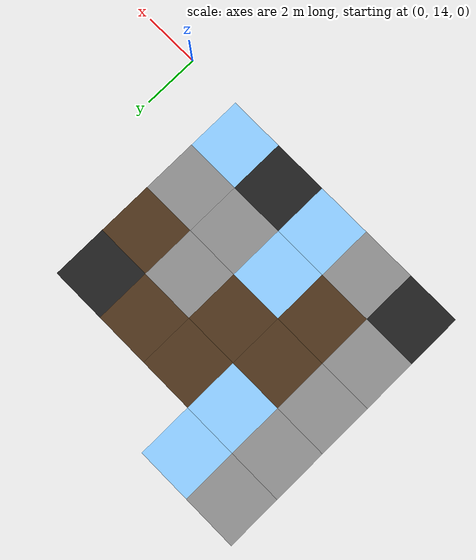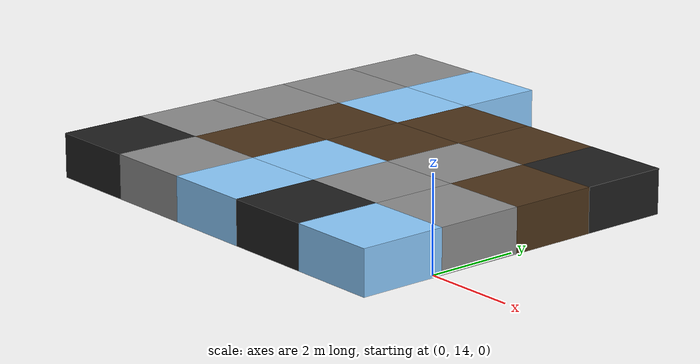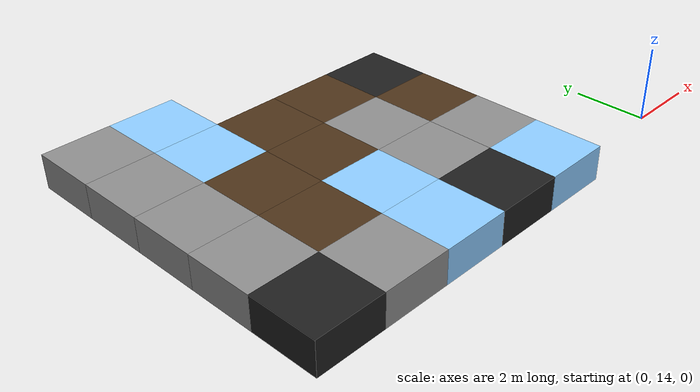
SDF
<sdf version="1.5">
 <world name="squares_example">
  <model name="tile_10_23">
   <static>true</static>
   <pose>-11.000 15.000 -0.500 0 0 0</pose>
   <link name="link">
    <collision name="col">
     <geometry><box><size>2.0 2.0 1.0</size></box></geometry>
     <surface>
      <friction>
       <ode><mu>0.4</mu><mu2>0.15</mu2><fdir1>1 0 0</fdir1><slip1>0.0</slip1><slip2>0.0</slip2></ode>
       <torsional>
        <coefficient>0.03</coefficient>
        <use_patch_radius>false</use_patch_radius>
        <surface_radius>0.12</surface_radius>
        <ode><slip>0.0</slip></ode>
       </torsional>
      </friction>
      <bounce><restitution_coefficient>0.0</restitution_coefficient><threshold>0.1</threshold></bounce>
      <contact>
       <ode><kp>1000000000.0</kp><kd>1000000.0</kd><max_vel>0.01</max_vel><min_depth>0.0</min_depth></ode>
      </contact>
     </surface>
    </collision>
    <visual name="visual">
     <geometry><box><size>2.0 2.0 1.0</size></box></geometry>
     <material>
      <diffuse>0.12 0.12 0.12 1</diffuse>
      <ambient>0 0 0 0</ambient>
      <specular>0 0 0 1</specular>
      <emissive>0 0 0 1</emissive>
     </material>
    </visual>
   </link>
  </model>
  <model name="tile_11_23">
   <static>true</static>
   <pose>-9.000 15.000 -0.500 0 0 0</pose>
   <link name="link">
    <collision name="col">
     <geometry><box><size>2.0 2.0 1.0</size></box></geometry>
     <surface>
      <friction>
       <ode><mu>0.8</mu><mu2>0.3</mu2><fdir1>1 0 0</fdir1><slip1>0.0</slip1><slip2>0.0</slip2></ode>
       <torsional>
        <coefficient>0.03</coefficient>
        <use_patch_radius>false</use_patch_radius>
        <surface_radius>0.12</surface_radius>
        <ode><slip>0.0</slip></ode>
       </torsional>
      </friction>
      <bounce><restitution_coefficient>0.0</restitution_coefficient><threshold>0.1</threshold></bounce>
      <contact>
       <ode><kp>10000000000.0</kp><kd>10000000.0</kd><max_vel>0.01</max_vel><min_depth>0.0</min_depth></ode>
      </contact>
     </surface>
    </collision>
    <visual name="visual">
     <geometry><box><size>2.0 2.0 1.0</size></box></geometry>
     <material>
      <diffuse>0.55 0.55 0.55 1</diffuse>
      <ambient>0 0 0 0</ambient>
      <specular>0 0 0 1</specular>
      <emissive>0 0 0 1</emissive>
     </material>
    </visual>
   </link>
  </model>
  <model name="tile_12_23">
   <static>true</static>
   <pose>-7.000 15.000 -0.500 0 0 0</pose>
   <link name="link">
    <collision name="col">
     <geometry><box><size>2.0 2.0 1.0</size></box></geometry>
     <surface>
      <friction>
       <ode><mu>0.03</mu><mu2>0.02</mu2><fdir1>1 0 0</fdir1><slip1>0.03</slip1><slip2>0.03</slip2></ode>
       <torsional>
        <coefficient>0.005</coefficient>
        <use_patch_radius>false</use_patch_radius>
        <surface_radius>0.12</surface_radius>
        <ode><slip>0.01</slip></ode>
       </torsional>
      </friction>
      <bounce><restitution_coefficient>0.0</restitution_coefficient><threshold>0.1</threshold></bounce>
      <contact>
       <ode><kp>10000000.0</kp><kd>1000.0</kd><max_vel>0.01</max_vel><min_depth>0.0</min_depth></ode>
      </contact>
     </surface>
    </collision>
    <visual name="visual">
     <geometry><box><size>2.0 2.0 1.0</size></box></geometry>
     <material>
      <diffuse>0.55 0.80 1.00 1</diffuse>
      <ambient>0 0 0 0</ambient>
      <specular>0 0 0 1</specular>
      <emissive>0 0 0 1</emissive>
     </material>
    </visual>
   </link>
  </model>
  <model name="tile_13_23">
   <static>true</static>
   <pose>-5.000 15.000 -0.500 0 0 0</pose>
   <link name="link">
    <collision name="col">
     <geometry><box><size>2.0 2.0 1.0</size></box></geometry>
     <surface>
      <friction>
       <ode><mu>0.4</mu><mu2>0.15</mu2><fdir1>1 0 0</fdir1><slip1>0.0</slip1><slip2>0.0</slip2></ode>
       <torsional>
        <coefficient>0.03</coefficient>
        <use_patch_radius>false</use_patch_radius>
        <surface_radius>0.12</surface_radius>
        <ode><slip>0.0</slip></ode>
       </torsional>
      </friction>
      <bounce><restitution_coefficient>0.0</restitution_coefficient><threshold>0.1</threshold></bounce>
      <contact>
       <ode><kp>1000000000.0</kp><kd>1000000.0</kd><max_vel>0.01</max_vel><min_depth>0.0</min_depth></ode>
      </contact>
     </surface>
    </collision>
    <visual name="visual">
     <geometry><box><size>2.0 2.0 1.0</size></box></geometry>
     <material>
      <diffuse>0.12 0.12 0.12 1</diffuse>
      <ambient>0 0 0 0</ambient>
      <specular>0 0 0 1</specular>
      <emissive>0 0 0 1</emissive>
     </material>
    </visual>
   </link>
  </model>
  <model name="tile_14_23">
   <static>true</static>
   <pose>-3.000 15.000 -0.500 0 0 0</pose>
   <link name="link">
    <collision name="col">
     <geometry><box><size>2.0 2.0 1.0</size></box></geometry>
     <surface>
      <friction>
       <ode><mu>0.03</mu><mu2>0.02</mu2><fdir1>1 0 0</fdir1><slip1>0.03</slip1><slip2>0.03</slip2></ode>
       <torsional>
        <coefficient>0.005</coefficient>
        <use_patch_radius>false</use_patch_radius>
        <surface_radius>0.12</surface_radius>
        <ode><slip>0.01</slip></ode>
       </torsional>
      </friction>
      <bounce><restitution_coefficient>0.0</restitution_coefficient><threshold>0.1</threshold></bounce>
      <contact>
       <ode><kp>10000000.0</kp><kd>1000.0</kd><max_vel>0.01</max_vel><min_depth>0.0</min_depth></ode>
      </contact>
     </surface>
    </collision>
    <visual name="visual">
     <geometry><box><size>2.0 2.0 1.0</size></box></geometry>
     <material>
      <diffuse>0.55 0.80 1.00 1</diffuse>
      <ambient>0 0 0 0</ambient>
      <specular>0 0 0 1</specular>
      <emissive>0 0 0 1</emissive>
     </material>
    </visual>
   </link>
  </model>
  <model name="tile_10_24">
   <static>true</static>
   <pose>-11.000 17.000 -0.500 0 0 0</pose>
   <link name="link">
    <collision name="col">
     <geometry><box><size>2.0 2.0 1.0</size></box></geometry>
     <surface>
      <friction>
       <ode><mu>0.8</mu><mu2>0.3</mu2><fdir1>1 0 0</fdir1><slip1>0.0</slip1><slip2>0.0</slip2></ode>
       <torsional>
        <coefficient>0.03</coefficient>
        <use_patch_radius>false</use_patch_radius>
        <surface_radius>0.12</surface_radius>
        <ode><slip>0.0</slip></ode>
       </torsional>
      </friction>
      <bounce><restitution_coefficient>0.0</restitution_coefficient><threshold>0.1</threshold></bounce>
      <contact>
       <ode><kp>10000000000.0</kp><kd>10000000.0</kd><max_vel>0.01</max_vel><min_depth>0.0</min_depth></ode>
      </contact>
     </surface>
    </collision>
    <visual name="visual">
     <geometry><box><size>2.0 2.0 1.0</size></box></geometry>
     <material>
      <diffuse>0.55 0.55 0.55 1</diffuse>
      <ambient>0 0 0 0</ambient>
      <specular>0 0 0 1</specular>
      <emissive>0 0 0 1</emissive>
     </material>
    </visual>
   </link>
  </model>
  <model name="tile_11_24">
   <static>true</static>
   <pose>-9.000 17.000 -0.500 0 0 0</pose>
   <link name="link">
    <collision name="col">
     <geometry><box><size>2.0 2.0 1.0</size></box></geometry>
     <surface>
      <friction>
       <ode><mu>0.6</mu><mu2>0.4</mu2><fdir1>1 0 0</fdir1><slip1>0.08</slip1><slip2>0.08</slip2></ode>
       <torsional>
        <coefficient>0.03</coefficient>
        <use_patch_radius>false</use_patch_radius>
        <surface_radius>0.12</surface_radius>
        <ode><slip>0.0</slip></ode>
       </torsional>
      </friction>
      <bounce><restitution_coefficient>0.0</restitution_coefficient><threshold>0.1</threshold></bounce>
      <contact>
       <ode><kp>1000000.0</kp><kd>10000.0</kd><max_vel>0.01</max_vel><min_depth>0.0</min_depth></ode>
      </contact>
     </surface>
    </collision>
    <visual name="visual">
     <geometry><box><size>2.0 2.0 1.0</size></box></geometry>
     <material>
      <diffuse>0.30 0.20 0.10 1</diffuse>
      <ambient>0 0 0 0</ambient>
      <specular>0 0 0 1</specular>
      <emissive>0 0 0 1</emissive>
     </material>
    </visual>
   </link>
  </model>
  <model name="tile_12_24">
   <static>true</static>
   <pose>-7.000 17.000 -0.500 0 0 0</pose>
   <link name="link">
    <collision name="col">
     <geometry><box><size>2.0 2.0 1.0</size></box></geometry>
     <surface>
      <friction>
       <ode><mu>0.03</mu><mu2>0.02</mu2><fdir1>1 0 0</fdir1><slip1>0.03</slip1><slip2>0.03</slip2></ode>
       <torsional>
        <coefficient>0.005</coefficient>
        <use_patch_radius>false</use_patch_radius>
        <surface_radius>0.12</surface_radius>
        <ode><slip>0.01</slip></ode>
       </torsional>
      </friction>
      <bounce><restitution_coefficient>0.0</restitution_coefficient><threshold>0.1</threshold></bounce>
      <contact>
       <ode><kp>10000000.0</kp><kd>1000.0</kd><max_vel>0.01</max_vel><min_depth>0.0</min_depth></ode>
      </contact>
     </surface>
    </collision>
    <visual name="visual">
     <geometry><box><size>2.0 2.0 1.0</size></box></geometry>
     <material>
      <diffuse>0.55 0.80 1.00 1</diffuse>
      <ambient>0 0 0 0</ambient>
      <specular>0 0 0 1</specular>
      <emissive>0 0 0 1</emissive>
     </material>
    </visual>
   </link>
  </model>
  <model name="tile_13_24">
   <static>true</static>
   <pose>-5.000 17.000 -0.500 0 0 0</pose>
   <link name="link">
    <collision name="col">
     <geometry><box><size>2.0 2.0 1.0</size></box></geometry>
     <surface>
      <friction>
       <ode><mu>0.8</mu><mu2>0.3</mu2><fdir1>1 0 0</fdir1><slip1>0.0</slip1><slip2>0.0</slip2></ode>
       <torsional>
        <coefficient>0.03</coefficient>
        <use_patch_radius>false</use_patch_radius>
        <surface_radius>0.12</surface_radius>
        <ode><slip>0.0</slip></ode>
       </torsional>
      </friction>
      <bounce><restitution_coefficient>0.0</restitution_coefficient><threshold>0.1</threshold></bounce>
      <contact>
       <ode><kp>10000000000.0</kp><kd>10000000.0</kd><max_vel>0.01</max_vel><min_depth>0.0</min_depth></ode>
      </contact>
     </surface>
    </collision>
    <visual name="visual">
     <geometry><box><size>2.0 2.0 1.0</size></box></geometry>
     <material>
      <diffuse>0.55 0.55 0.55 1</diffuse>
      <ambient>0 0 0 0</ambient>
      <specular>0 0 0 1</specular>
      <emissive>0 0 0 1</emissive>
     </material>
    </visual>
   </link>
  </model>
  <model name="tile_14_24">
   <static>true</static>
   <pose>-3.000 17.000 -0.500 0 0 0</pose>
   <link name="link">
    <collision name="col">
     <geometry><box><size>2.0 2.0 1.0</size></box></geometry>
     <surface>
      <friction>
       <ode><mu>0.8</mu><mu2>0.3</mu2><fdir1>1 0 0</fdir1><slip1>0.0</slip1><slip2>0.0</slip2></ode>
       <torsional>
        <coefficient>0.03</coefficient>
        <use_patch_radius>false</use_patch_radius>
        <surface_radius>0.12</surface_radius>
        <ode><slip>0.0</slip></ode>
       </torsional>
      </friction>
      <bounce><restitution_coefficient>0.0</restitution_coefficient><threshold>0.1</threshold></bounce>
      <contact>
       <ode><kp>10000000000.0</kp><kd>10000000.0</kd><max_vel>0.01</max_vel><min_depth>0.0</min_depth></ode>
      </contact>
     </surface>
    </collision>
    <visual name="visual">
     <geometry><box><size>2.0 2.0 1.0</size></box></geometry>
     <material>
      <diffuse>0.55 0.55 0.55 1</diffuse>
      <ambient>0 0 0 0</ambient>
      <specular>0 0 0 1</specular>
      <emissive>0 0 0 1</emissive>
     </material>
    </visual>
   </link>
  </model>
  <model name="tile_10_25">
   <static>true</static>
   <pose>-11.000 19.000 -0.500 0 0 0</pose>
   <link name="link">
    <collision name="col">
     <geometry><box><size>2.0 2.0 1.0</size></box></geometry>
     <surface>
      <friction>
       <ode><mu>0.8</mu><mu2>0.3</mu2><fdir1>1 0 0</fdir1><slip1>0.0</slip1><slip2>0.0</slip2></ode>
       <torsional>
        <coefficient>0.03</coefficient>
        <use_patch_radius>false</use_patch_radius>
        <surface_radius>0.12</surface_radius>
        <ode><slip>0.0</slip></ode>
       </torsional>
      </friction>
      <bounce><restitution_coefficient>0.0</restitution_coefficient><threshold>0.1</threshold></bounce>
      <contact>
       <ode><kp>10000000000.0</kp><kd>10000000.0</kd><max_vel>0.01</max_vel><min_depth>0.0</min_depth></ode>
      </contact>
     </surface>
    </collision>
    <visual name="visual">
     <geometry><box><size>2.0 2.0 1.0</size></box></geometry>
     <material>
      <diffuse>0.55 0.55 0.55 1</diffuse>
      <ambient>0 0 0 0</ambient>
      <specular>0 0 0 1</specular>
      <emissive>0 0 0 1</emissive>
     </material>
    </visual>
   </link>
  </model>
  <model name="tile_11_25">
   <static>true</static>
   <pose>-9.000 19.000 -0.500 0 0 0</pose>
   <link name="link">
    <collision name="col">
     <geometry><box><size>2.0 2.0 1.0</size></box></geometry>
     <surface>
      <friction>
       <ode><mu>0.6</mu><mu2>0.4</mu2><fdir1>1 0 0</fdir1><slip1>0.08</slip1><slip2>0.08</slip2></ode>
       <torsional>
        <coefficient>0.03</coefficient>
        <use_patch_radius>false</use_patch_radius>
        <surface_radius>0.12</surface_radius>
        <ode><slip>0.0</slip></ode>
       </torsional>
      </friction>
      <bounce><restitution_coefficient>0.0</restitution_coefficient><threshold>0.1</threshold></bounce>
      <contact>
       <ode><kp>1000000.0</kp><kd>10000.0</kd><max_vel>0.01</max_vel><min_depth>0.0</min_depth></ode>
      </contact>
     </surface>
    </collision>
    <visual name="visual">
     <geometry><box><size>2.0 2.0 1.0</size></box></geometry>
     <material>
      <diffuse>0.30 0.20 0.10 1</diffuse>
      <ambient>0 0 0 0</ambient>
      <specular>0 0 0 1</specular>
      <emissive>0 0 0 1</emissive>
     </material>
    </visual>
   </link>
  </model>
  <model name="tile_12_25">
   <static>true</static>
   <pose>-7.000 19.000 -0.500 0 0 0</pose>
   <link name="link">
    <collision name="col">
     <geometry><box><size>2.0 2.0 1.0</size></box></geometry>
     <surface>
      <friction>
       <ode><mu>0.6</mu><mu2>0.4</mu2><fdir1>1 0 0</fdir1><slip1>0.08</slip1><slip2>0.08</slip2></ode>
       <torsional>
        <coefficient>0.03</coefficient>
        <use_patch_radius>false</use_patch_radius>
        <surface_radius>0.12</surface_radius>
        <ode><slip>0.0</slip></ode>
       </torsional>
      </friction>
      <bounce><restitution_coefficient>0.0</restitution_coefficient><threshold>0.1</threshold></bounce>
      <contact>
       <ode><kp>1000000.0</kp><kd>10000.0</kd><max_vel>0.01</max_vel><min_depth>0.0</min_depth></ode>
      </contact>
     </surface>
    </collision>
    <visual name="visual">
     <geometry><box><size>2.0 2.0 1.0</size></box></geometry>
     <material>
      <diffuse>0.30 0.20 0.10 1</diffuse>
      <ambient>0 0 0 0</ambient>
      <specular>0 0 0 1</specular>
      <emissive>0 0 0 1</emissive>
     </material>
    </visual>
   </link>
  </model>
  <model name="tile_13_25">
   <static>true</static>
   <pose>-5.000 19.000 -0.500 0 0 0</pose>
   <link name="link">
    <collision name="col">
     <geometry><box><size>2.0 2.0 1.0</size></box></geometry>
     <surface>
      <friction>
       <ode><mu>0.8</mu><mu2>0.3</mu2><fdir1>1 0 0</fdir1><slip1>0.0</slip1><slip2>0.0</slip2></ode>
       <torsional>
        <coefficient>0.03</coefficient>
        <use_patch_radius>false</use_patch_radius>
        <surface_radius>0.12</surface_radius>
        <ode><slip>0.0</slip></ode>
       </torsional>
      </friction>
      <bounce><restitution_coefficient>0.0</restitution_coefficient><threshold>0.1</threshold></bounce>
      <contact>
       <ode><kp>10000000000.0</kp><kd>10000000.0</kd><max_vel>0.01</max_vel><min_depth>0.0</min_depth></ode>
      </contact>
     </surface>
    </collision>
    <visual name="visual">
     <geometry><box><size>2.0 2.0 1.0</size></box></geometry>
     <material>
      <diffuse>0.55 0.55 0.55 1</diffuse>
      <ambient>0 0 0 0</ambient>
      <specular>0 0 0 1</specular>
      <emissive>0 0 0 1</emissive>
     </material>
    </visual>
   </link>
  </model>
  <model name="tile_14_25">
   <static>true</static>
   <pose>-3.000 19.000 -0.500 0 0 0</pose>
   <link name="link">
    <collision name="col">
     <geometry><box><size>2.0 2.0 1.0</size></box></geometry>
     <surface>
      <friction>
       <ode><mu>0.6</mu><mu2>0.4</mu2><fdir1>1 0 0</fdir1><slip1>0.08</slip1><slip2>0.08</slip2></ode>
       <torsional>
        <coefficient>0.03</coefficient>
        <use_patch_radius>false</use_patch_radius>
        <surface_radius>0.12</surface_radius>
        <ode><slip>0.0</slip></ode>
       </torsional>
      </friction>
      <bounce><restitution_coefficient>0.0</restitution_coefficient><threshold>0.1</threshold></bounce>
      <contact>
       <ode><kp>1000000.0</kp><kd>10000.0</kd><max_vel>0.01</max_vel><min_depth>0.0</min_depth></ode>
      </contact>
     </surface>
    </collision>
    <visual name="visual">
     <geometry><box><size>2.0 2.0 1.0</size></box></geometry>
     <material>
      <diffuse>0.30 0.20 0.10 1</diffuse>
      <ambient>0 0 0 0</ambient>
      <specular>0 0 0 1</specular>
      <emissive>0 0 0 1</emissive>
     </material>
    </visual>
   </link>
  </model>
  <model name="tile_10_26">
   <static>true</static>
   <pose>-11.000 21.000 -0.500 0 0 0</pose>
   <link name="link">
    <collision name="col">
     <geometry><box><size>2.0 2.0 1.0</size></box></geometry>
     <surface>
      <friction>
       <ode><mu>0.8</mu><mu2>0.3</mu2><fdir1>1 0 0</fdir1><slip1>0.0</slip1><slip2>0.0</slip2></ode>
       <torsional>
        <coefficient>0.03</coefficient>
        <use_patch_radius>false</use_patch_radius>
        <surface_radius>0.12</surface_radius>
        <ode><slip>0.0</slip></ode>
       </torsional>
      </friction>
      <bounce><restitution_coefficient>0.0</restitution_coefficient><threshold>0.1</threshold></bounce>
      <contact>
       <ode><kp>10000000000.0</kp><kd>10000000.0</kd><max_vel>0.01</max_vel><min_depth>0.0</min_depth></ode>
      </contact>
     </surface>
    </collision>
    <visual name="visual">
     <geometry><box><size>2.0 2.0 1.0</size></box></geometry>
     <material>
      <diffuse>0.55 0.55 0.55 1</diffuse>
      <ambient>0 0 0 0</ambient>
      <specular>0 0 0 1</specular>
      <emissive>0 0 0 1</emissive>
     </material>
    </visual>
   </link>
  </model>
  <model name="tile_11_26">
   <static>true</static>
   <pose>-9.000 21.000 -0.500 0 0 0</pose>
   <link name="link">
    <collision name="col">
     <geometry><box><size>2.0 2.0 1.0</size></box></geometry>
     <surface>
      <friction>
       <ode><mu>0.03</mu><mu2>0.02</mu2><fdir1>1 0 0</fdir1><slip1>0.03</slip1><slip2>0.03</slip2></ode>
       <torsional>
        <coefficient>0.005</coefficient>
        <use_patch_radius>false</use_patch_radius>
        <surface_radius>0.12</surface_radius>
        <ode><slip>0.01</slip></ode>
       </torsional>
      </friction>
      <bounce><restitution_coefficient>0.0</restitution_coefficient><threshold>0.1</threshold></bounce>
      <contact>
       <ode><kp>10000000.0</kp><kd>1000.0</kd><max_vel>0.01</max_vel><min_depth>0.0</min_depth></ode>
      </contact>
     </surface>
    </collision>
    <visual name="visual">
     <geometry><box><size>2.0 2.0 1.0</size></box></geometry>
     <material>
      <diffuse>0.55 0.80 1.00 1</diffuse>
      <ambient>0 0 0 0</ambient>
      <specular>0 0 0 1</specular>
      <emissive>0 0 0 1</emissive>
     </material>
    </visual>
   </link>
  </model>
  <model name="tile_12_26">
   <static>true</static>
   <pose>-7.000 21.000 -0.500 0 0 0</pose>
   <link name="link">
    <collision name="col">
     <geometry><box><size>2.0 2.0 1.0</size></box></geometry>
     <surface>
      <friction>
       <ode><mu>0.6</mu><mu2>0.4</mu2><fdir1>1 0 0</fdir1><slip1>0.08</slip1><slip2>0.08</slip2></ode>
       <torsional>
        <coefficient>0.03</coefficient>
        <use_patch_radius>false</use_patch_radius>
        <surface_radius>0.12</surface_radius>
        <ode><slip>0.0</slip></ode>
       </torsional>
      </friction>
      <bounce><restitution_coefficient>0.0</restitution_coefficient><threshold>0.1</threshold></bounce>
      <contact>
       <ode><kp>1000000.0</kp><kd>10000.0</kd><max_vel>0.01</max_vel><min_depth>0.0</min_depth></ode>
      </contact>
     </surface>
    </collision>
    <visual name="visual">
     <geometry><box><size>2.0 2.0 1.0</size></box></geometry>
     <material>
      <diffuse>0.30 0.20 0.10 1</diffuse>
      <ambient>0 0 0 0</ambient>
      <specular>0 0 0 1</specular>
      <emissive>0 0 0 1</emissive>
     </material>
    </visual>
   </link>
  </model>
  <model name="tile_13_26">
   <static>true</static>
   <pose>-5.000 21.000 -0.500 0 0 0</pose>
   <link name="link">
    <collision name="col">
     <geometry><box><size>2.0 2.0 1.0</size></box></geometry>
     <surface>
      <friction>
       <ode><mu>0.6</mu><mu2>0.4</mu2><fdir1>1 0 0</fdir1><slip1>0.08</slip1><slip2>0.08</slip2></ode>
       <torsional>
        <coefficient>0.03</coefficient>
        <use_patch_radius>false</use_patch_radius>
        <surface_radius>0.12</surface_radius>
        <ode><slip>0.0</slip></ode>
       </torsional>
      </friction>
      <bounce><restitution_coefficient>0.0</restitution_coefficient><threshold>0.1</threshold></bounce>
      <contact>
       <ode><kp>1000000.0</kp><kd>10000.0</kd><max_vel>0.01</max_vel><min_depth>0.0</min_depth></ode>
      </contact>
     </surface>
    </collision>
    <visual name="visual">
     <geometry><box><size>2.0 2.0 1.0</size></box></geometry>
     <material>
      <diffuse>0.30 0.20 0.10 1</diffuse>
      <ambient>0 0 0 0</ambient>
      <specular>0 0 0 1</specular>
      <emissive>0 0 0 1</emissive>
     </material>
    </visual>
   </link>
  </model>
  <model name="tile_14_26">
   <static>true</static>
   <pose>-3.000 21.000 -0.500 0 0 0</pose>
   <link name="link">
    <collision name="col">
     <geometry><box><size>2.0 2.0 1.0</size></box></geometry>
     <surface>
      <friction>
       <ode><mu>0.4</mu><mu2>0.15</mu2><fdir1>1 0 0</fdir1><slip1>0.0</slip1><slip2>0.0</slip2></ode>
       <torsional>
        <coefficient>0.03</coefficient>
        <use_patch_radius>false</use_patch_radius>
        <surface_radius>0.12</surface_radius>
        <ode><slip>0.0</slip></ode>
       </torsional>
      </friction>
      <bounce><restitution_coefficient>0.0</restitution_coefficient><threshold>0.1</threshold></bounce>
      <contact>
       <ode><kp>1000000000.0</kp><kd>1000000.0</kd><max_vel>0.01</max_vel><min_depth>0.0</min_depth></ode>
      </contact>
     </surface>
    </collision>
    <visual name="visual">
     <geometry><box><size>2.0 2.0 1.0</size></box></geometry>
     <material>
      <diffuse>0.12 0.12 0.12 1</diffuse>
      <ambient>0 0 0 0</ambient>
      <specular>0 0 0 1</specular>
      <emissive>0 0 0 1</emissive>
     </material>
    </visual>
   </link>
  </model>
  <model name="tile_10_27">
   <static>true</static>
   <pose>-11.000 23.000 -0.500 0 0 0</pose>
   <link name="link">
    <collision name="col">
     <geometry><box><size>2.0 2.0 1.0</size></box></geometry>
     <surface>
      <friction>
       <ode><mu>0.8</mu><mu2>0.3</mu2><fdir1>1 0 0</fdir1><slip1>0.0</slip1><slip2>0.0</slip2></ode>
       <torsional>
        <coefficient>0.03</coefficient>
        <use_patch_radius>false</use_patch_radius>
        <surface_radius>0.12</surface_radius>
        <ode><slip>0.0</slip></ode>
       </torsional>
      </friction>
      <bounce><restitution_coefficient>0.0</restitution_coefficient><threshold>0.1</threshold></bounce>
      <contact>
       <ode><kp>10000000000.0</kp><kd>10000000.0</kd><max_vel>0.01</max_vel><min_depth>0.0</min_depth></ode>
      </contact>
     </surface>
    </collision>
    <visual name="visual">
     <geometry><box><size>2.0 2.0 1.0</size></box></geometry>
     <material>
      <diffuse>0.55 0.55 0.55 1</diffuse>
      <ambient>0 0 0 0</ambient>
      <specular>0 0 0 1</specular>
      <emissive>0 0 0 1</emissive>
     </material>
    </visual>
   </link>
  </model>
  <model name="tile_11_27">
   <static>true</static>
   <pose>-9.000 23.000 -0.500 0 0 0</pose>
   <link name="link">
    <collision name="col">
     <geometry><box><size>2.0 2.0 1.0</size></box></geometry>
     <surface>
      <friction>
       <ode><mu>0.03</mu><mu2>0.02</mu2><fdir1>1 0 0</fdir1><slip1>0.03</slip1><slip2>0.03</slip2></ode>
       <torsional>
        <coefficient>0.005</coefficient>
        <use_patch_radius>false</use_patch_radius>
        <surface_radius>0.12</surface_radius>
        <ode><slip>0.01</slip></ode>
       </torsional>
      </friction>
      <bounce><restitution_coefficient>0.0</restitution_coefficient><threshold>0.1</threshold></bounce>
      <contact>
       <ode><kp>10000000.0</kp><kd>1000.0</kd><max_vel>0.01</max_vel><min_depth>0.0</min_depth></ode>
      </contact>
     </surface>
    </collision>
    <visual name="visual">
     <geometry><box><size>2.0 2.0 1.0</size></box></geometry>
     <material>
      <diffuse>0.55 0.80 1.00 1</diffuse>
      <ambient>0 0 0 0</ambient>
      <specular>0 0 0 1</specular>
      <emissive>0 0 0 1</emissive>
     </material>
    </visual>
   </link>
  </model>
 </world>
</sdf>
